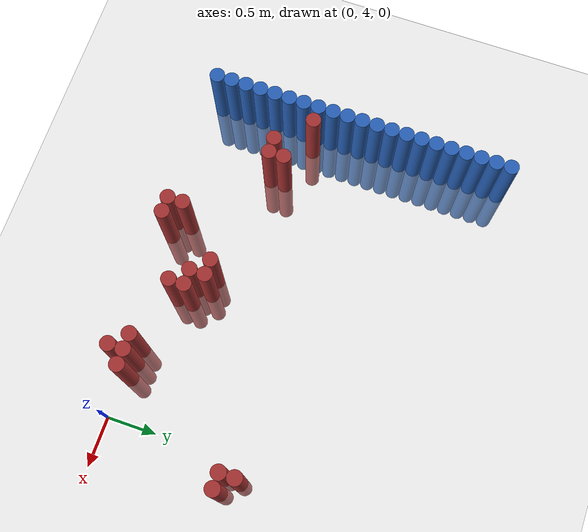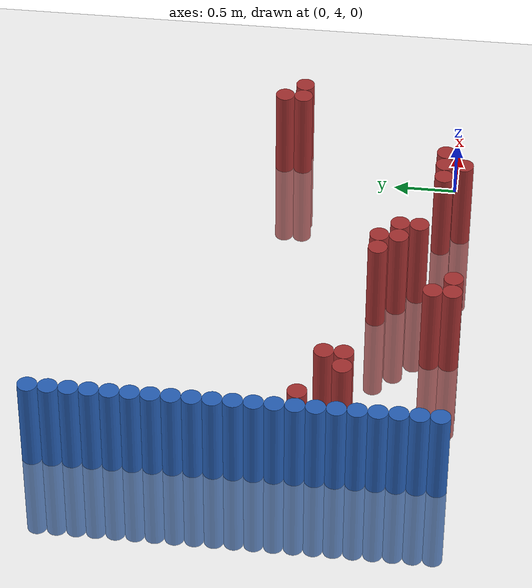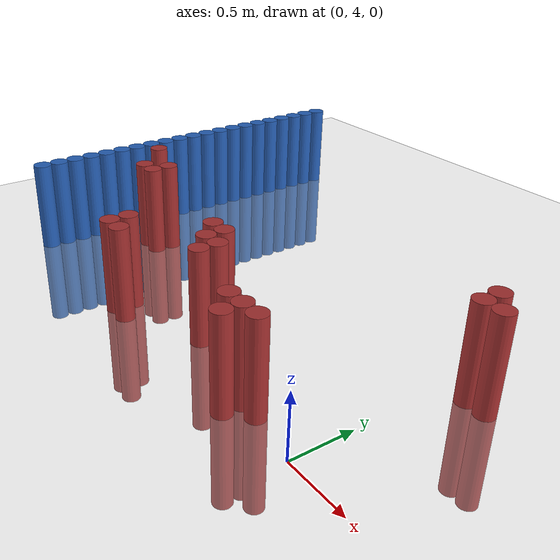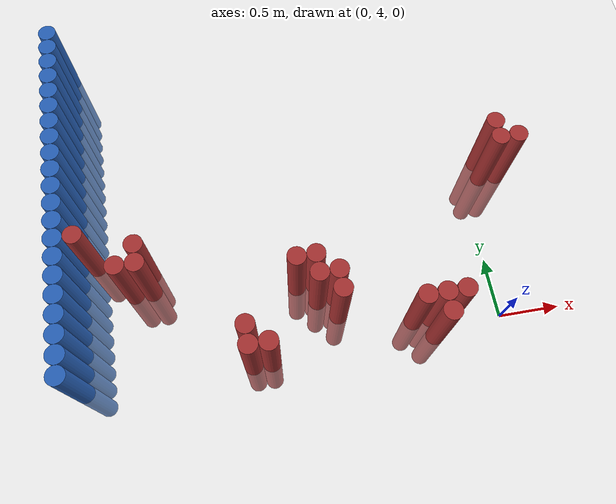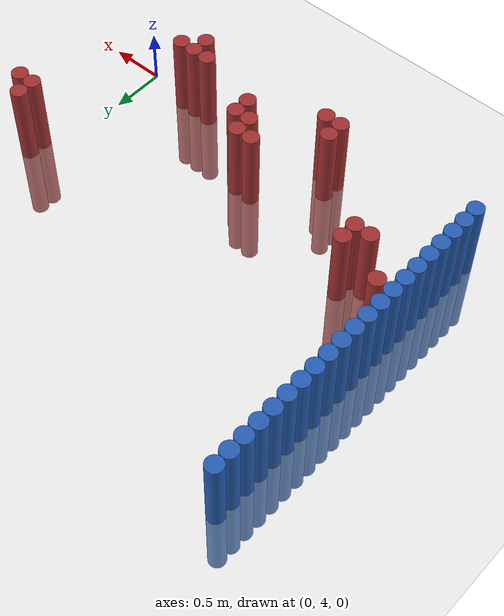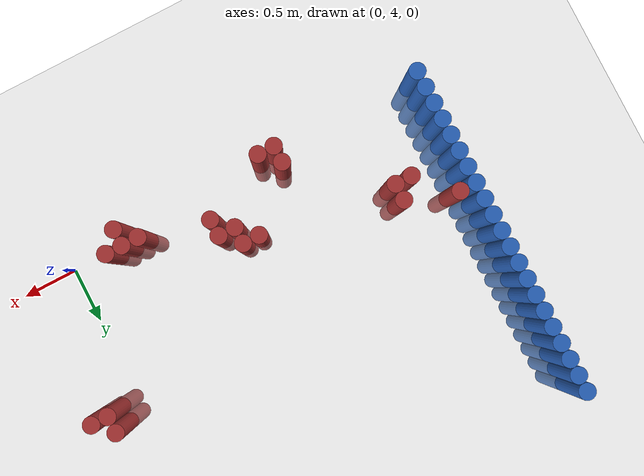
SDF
<sdf version="1.6">
 <world name="default">
  <model name="ground_plane">
   <static>1</static>
   <link name="link">
    <collision name="collision">
     <geometry><plane><normal>0 0 1</normal><size>100 100</size></plane></geometry>
     <surface><friction><ode><mu>100</mu><mu2>50</mu2></ode></friction></surface>
    </collision>
    <visual name="visual">
     <cast_shadows>0</cast_shadows>
     <geometry><plane><normal>0 0 1</normal><size>100 100</size></plane></geometry>
     <material>
      <script><uri>file://media/materials/scripts/gazebo.material</uri><name>Gazebo/Grey</name></script>
     </material>
    </visual>
   </link>
  </model>
  <model name="unit_cylinder_169">
   <static>1</static>
   <pose>-3.425000 4.075000 0.000000 0.000000 0.000000 0.000000</pose>
   <link name="link">
    <inertial>
     <mass>1</mass>
     <inertia><ixx>0.145833</ixx><ixy>0</ixy><ixz>0</ixz><iyy>0.145833</iyy><iyz>0</iyz><izz>0.125</izz></inertia>
    </inertial>
    <collision name="collision">
     <geometry><cylinder><radius>0.075000</radius><length>1.5</length></cylinder></geometry>
    </collision>
    <visual name="visual">
     <geometry><cylinder><radius>0.075000</radius><length>1.5</length></cylinder></geometry>
     <material>
      <ambient>0.152000 0.379000 0.720000 1</ambient>
      <diffuse>0.152000 0.379000 0.720000 1</diffuse>
     </material>
     <material>
      <script><name>Gazebo/Grey</name><uri>file://media/materials/scripts/gazebo.material</uri></script>
     </material>
    </visual>
   </link>
  </model>
  <model name="unit_cylinder_171">
   <static>1</static>
   <pose>-3.425000 4.225000 0.000000 0.000000 0.000000 0.000000</pose>
   <link name="link">
    <inertial>
     <mass>1</mass>
     <inertia><ixx>0.145833</ixx><ixy>0</ixy><ixz>0</ixz><iyy>0.145833</iyy><iyz>0</iyz><izz>0.125</izz></inertia>
    </inertial>
    <collision name="collision">
     <geometry><cylinder><radius>0.075000</radius><length>1.5</length></cylinder></geometry>
    </collision>
    <visual name="visual">
     <geometry><cylinder><radius>0.075000</radius><length>1.5</length></cylinder></geometry>
     <material>
      <ambient>0.152000 0.379000 0.720000 1</ambient>
      <diffuse>0.152000 0.379000 0.720000 1</diffuse>
     </material>
     <material>
      <script><name>Gazebo/Grey</name><uri>file://media/materials/scripts/gazebo.material</uri></script>
     </material>
    </visual>
   </link>
  </model>
  <model name="unit_cylinder_173">
   <static>1</static>
   <pose>-3.425000 4.375000 0.000000 0.000000 0.000000 0.000000</pose>
   <link name="link">
    <inertial>
     <mass>1</mass>
     <inertia><ixx>0.145833</ixx><ixy>0</ixy><ixz>0</ixz><iyy>0.145833</iyy><iyz>0</iyz><izz>0.125</izz></inertia>
    </inertial>
    <collision name="collision">
     <geometry><cylinder><radius>0.075000</radius><length>1.5</length></cylinder></geometry>
    </collision>
    <visual name="visual">
     <geometry><cylinder><radius>0.075000</radius><length>1.5</length></cylinder></geometry>
     <material>
      <ambient>0.152000 0.379000 0.720000 1</ambient>
      <diffuse>0.152000 0.379000 0.720000 1</diffuse>
     </material>
     <material>
      <script><name>Gazebo/Grey</name><uri>file://media/materials/scripts/gazebo.material</uri></script>
     </material>
    </visual>
   </link>
  </model>
  <model name="unit_cylinder_175">
   <static>1</static>
   <pose>-3.425000 4.525000 0.000000 0.000000 0.000000 0.000000</pose>
   <link name="link">
    <inertial>
     <mass>1</mass>
     <inertia><ixx>0.145833</ixx><ixy>0</ixy><ixz>0</ixz><iyy>0.145833</iyy><iyz>0</iyz><izz>0.125</izz></inertia>
    </inertial>
    <collision name="collision">
     <geometry><cylinder><radius>0.075000</radius><length>1.5</length></cylinder></geometry>
    </collision>
    <visual name="visual">
     <geometry><cylinder><radius>0.075000</radius><length>1.5</length></cylinder></geometry>
     <material>
      <ambient>0.152000 0.379000 0.720000 1</ambient>
      <diffuse>0.152000 0.379000 0.720000 1</diffuse>
     </material>
     <material>
      <script><name>Gazebo/Grey</name><uri>file://media/materials/scripts/gazebo.material</uri></script>
     </material>
    </visual>
   </link>
  </model>
  <model name="unit_cylinder_177">
   <static>1</static>
   <pose>-3.425000 4.675000 0.000000 0.000000 0.000000 0.000000</pose>
   <link name="link">
    <inertial>
     <mass>1</mass>
     <inertia><ixx>0.145833</ixx><ixy>0</ixy><ixz>0</ixz><iyy>0.145833</iyy><iyz>0</iyz><izz>0.125</izz></inertia>
    </inertial>
    <collision name="collision">
     <geometry><cylinder><radius>0.075000</radius><length>1.5</length></cylinder></geometry>
    </collision>
    <visual name="visual">
     <geometry><cylinder><radius>0.075000</radius><length>1.5</length></cylinder></geometry>
     <material>
      <ambient>0.152000 0.379000 0.720000 1</ambient>
      <diffuse>0.152000 0.379000 0.720000 1</diffuse>
     </material>
     <material>
      <script><name>Gazebo/Grey</name><uri>file://media/materials/scripts/gazebo.material</uri></script>
     </material>
    </visual>
   </link>
  </model>
  <model name="unit_cylinder_179">
   <static>1</static>
   <pose>-3.425000 4.825000 0.000000 0.000000 0.000000 0.000000</pose>
   <link name="link">
    <inertial>
     <mass>1</mass>
     <inertia><ixx>0.145833</ixx><ixy>0</ixy><ixz>0</ixz><iyy>0.145833</iyy><iyz>0</iyz><izz>0.125</izz></inertia>
    </inertial>
    <collision name="collision">
     <geometry><cylinder><radius>0.075000</radius><length>1.5</length></cylinder></geometry>
    </collision>
    <visual name="visual">
     <geometry><cylinder><radius>0.075000</radius><length>1.5</length></cylinder></geometry>
     <material>
      <ambient>0.152000 0.379000 0.720000 1</ambient>
      <diffuse>0.152000 0.379000 0.720000 1</diffuse>
     </material>
     <material>
      <script><name>Gazebo/Grey</name><uri>file://media/materials/scripts/gazebo.material</uri></script>
     </material>
    </visual>
   </link>
  </model>
  <model name="unit_cylinder_181">
   <static>1</static>
   <pose>-3.425000 4.975000 0.000000 0.000000 0.000000 0.000000</pose>
   <link name="link">
    <inertial>
     <mass>1</mass>
     <inertia><ixx>0.145833</ixx><ixy>0</ixy><ixz>0</ixz><iyy>0.145833</iyy><iyz>0</iyz><izz>0.125</izz></inertia>
    </inertial>
    <collision name="collision">
     <geometry><cylinder><radius>0.075000</radius><length>1.5</length></cylinder></geometry>
    </collision>
    <visual name="visual">
     <geometry><cylinder><radius>0.075000</radius><length>1.5</length></cylinder></geometry>
     <material>
      <ambient>0.152000 0.379000 0.720000 1</ambient>
      <diffuse>0.152000 0.379000 0.720000 1</diffuse>
     </material>
     <material>
      <script><name>Gazebo/Grey</name><uri>file://media/materials/scripts/gazebo.material</uri></script>
     </material>
    </visual>
   </link>
  </model>
  <model name="unit_cylinder_183">
   <static>1</static>
   <pose>-3.425000 5.125000 0.000000 0.000000 0.000000 0.000000</pose>
   <link name="link">
    <inertial>
     <mass>1</mass>
     <inertia><ixx>0.145833</ixx><ixy>0</ixy><ixz>0</ixz><iyy>0.145833</iyy><iyz>0</iyz><izz>0.125</izz></inertia>
    </inertial>
    <collision name="collision">
     <geometry><cylinder><radius>0.075000</radius><length>1.5</length></cylinder></geometry>
    </collision>
    <visual name="visual">
     <geometry><cylinder><radius>0.075000</radius><length>1.5</length></cylinder></geometry>
     <material>
      <ambient>0.152000 0.379000 0.720000 1</ambient>
      <diffuse>0.152000 0.379000 0.720000 1</diffuse>
     </material>
     <material>
      <script><name>Gazebo/Grey</name><uri>file://media/materials/scripts/gazebo.material</uri></script>
     </material>
    </visual>
   </link>
  </model>
  <model name="unit_cylinder_185">
   <static>1</static>
   <pose>-3.425000 5.275000 0.000000 0.000000 0.000000 0.000000</pose>
   <link name="link">
    <inertial>
     <mass>1</mass>
     <inertia><ixx>0.145833</ixx><ixy>0</ixy><ixz>0</ixz><iyy>0.145833</iyy><iyz>0</iyz><izz>0.125</izz></inertia>
    </inertial>
    <collision name="collision">
     <geometry><cylinder><radius>0.075000</radius><length>1.5</length></cylinder></geometry>
    </collision>
    <visual name="visual">
     <geometry><cylinder><radius>0.075000</radius><length>1.5</length></cylinder></geometry>
     <material>
      <ambient>0.152000 0.379000 0.720000 1</ambient>
      <diffuse>0.152000 0.379000 0.720000 1</diffuse>
     </material>
     <material>
      <script><name>Gazebo/Grey</name><uri>file://media/materials/scripts/gazebo.material</uri></script>
     </material>
    </visual>
   </link>
  </model>
  <model name="unit_cylinder_187">
   <static>1</static>
   <pose>-3.425000 5.425000 0.000000 0.000000 0.000000 0.000000</pose>
   <link name="link">
    <inertial>
     <mass>1</mass>
     <inertia><ixx>0.145833</ixx><ixy>0</ixy><ixz>0</ixz><iyy>0.145833</iyy><iyz>0</iyz><izz>0.125</izz></inertia>
    </inertial>
    <collision name="collision">
     <geometry><cylinder><radius>0.075000</radius><length>1.5</length></cylinder></geometry>
    </collision>
    <visual name="visual">
     <geometry><cylinder><radius>0.075000</radius><length>1.5</length></cylinder></geometry>
     <material>
      <ambient>0.152000 0.379000 0.720000 1</ambient>
      <diffuse>0.152000 0.379000 0.720000 1</diffuse>
     </material>
     <material>
      <script><name>Gazebo/Grey</name><uri>file://media/materials/scripts/gazebo.material</uri></script>
     </material>
    </visual>
   </link>
  </model>
  <model name="unit_cylinder_189">
   <static>1</static>
   <pose>-3.425000 5.575000 0.000000 0.000000 0.000000 0.000000</pose>
   <link name="link">
    <inertial>
     <mass>1</mass>
     <inertia><ixx>0.145833</ixx><ixy>0</ixy><ixz>0</ixz><iyy>0.145833</iyy><iyz>0</iyz><izz>0.125</izz></inertia>
    </inertial>
    <collision name="collision">
     <geometry><cylinder><radius>0.075000</radius><length>1.5</length></cylinder></geometry>
    </collision>
    <visual name="visual">
     <geometry><cylinder><radius>0.075000</radius><length>1.5</length></cylinder></geometry>
     <material>
      <ambient>0.152000 0.379000 0.720000 1</ambient>
      <diffuse>0.152000 0.379000 0.720000 1</diffuse>
     </material>
     <material>
      <script><name>Gazebo/Grey</name><uri>file://media/materials/scripts/gazebo.material</uri></script>
     </material>
    </visual>
   </link>
  </model>
  <model name="unit_cylinder_191">
   <static>1</static>
   <pose>-3.425000 5.725000 0.000000 0.000000 0.000000 0.000000</pose>
   <link name="link">
    <inertial>
     <mass>1</mass>
     <inertia><ixx>0.145833</ixx><ixy>0</ixy><ixz>0</ixz><iyy>0.145833</iyy><iyz>0</iyz><izz>0.125</izz></inertia>
    </inertial>
    <collision name="collision">
     <geometry><cylinder><radius>0.075000</radius><length>1.5</length></cylinder></geometry>
    </collision>
    <visual name="visual">
     <geometry><cylinder><radius>0.075000</radius><length>1.5</length></cylinder></geometry>
     <material>
      <ambient>0.152000 0.379000 0.720000 1</ambient>
      <diffuse>0.152000 0.379000 0.720000 1</diffuse>
     </material>
     <material>
      <script><name>Gazebo/Grey</name><uri>file://media/materials/scripts/gazebo.material</uri></script>
     </material>
    </visual>
   </link>
  </model>
  <model name="unit_cylinder_193">
   <static>1</static>
   <pose>-3.425000 5.875000 0.000000 0.000000 0.000000 0.000000</pose>
   <link name="link">
    <inertial>
     <mass>1</mass>
     <inertia><ixx>0.145833</ixx><ixy>0</ixy><ixz>0</ixz><iyy>0.145833</iyy><iyz>0</iyz><izz>0.125</izz></inertia>
    </inertial>
    <collision name="collision">
     <geometry><cylinder><radius>0.075000</radius><length>1.5</length></cylinder></geometry>
    </collision>
    <visual name="visual">
     <geometry><cylinder><radius>0.075000</radius><length>1.5</length></cylinder></geometry>
     <material>
      <ambient>0.152000 0.379000 0.720000 1</ambient>
      <diffuse>0.152000 0.379000 0.720000 1</diffuse>
     </material>
     <material>
      <script><name>Gazebo/Grey</name><uri>file://media/materials/scripts/gazebo.material</uri></script>
     </material>
    </visual>
   </link>
  </model>
  <model name="unit_cylinder_195">
   <static>1</static>
   <pose>-3.425000 6.025000 0.000000 0.000000 0.000000 0.000000</pose>
   <link name="link">
    <inertial>
     <mass>1</mass>
     <inertia><ixx>0.145833</ixx><ixy>0</ixy><ixz>0</ixz><iyy>0.145833</iyy><iyz>0</iyz><izz>0.125</izz></inertia>
    </inertial>
    <collision name="collision">
     <geometry><cylinder><radius>0.075000</radius><length>1.5</length></cylinder></geometry>
    </collision>
    <visual name="visual">
     <geometry><cylinder><radius>0.075000</radius><length>1.5</length></cylinder></geometry>
     <material>
      <ambient>0.152000 0.379000 0.720000 1</ambient>
      <diffuse>0.152000 0.379000 0.720000 1</diffuse>
     </material>
     <material>
      <script><name>Gazebo/Grey</name><uri>file://media/materials/scripts/gazebo.material</uri></script>
     </material>
    </visual>
   </link>
  </model>
  <model name="unit_cylinder_197">
   <static>1</static>
   <pose>-3.425000 6.175000 0.000000 0.000000 0.000000 0.000000</pose>
   <link name="link">
    <inertial>
     <mass>1</mass>
     <inertia><ixx>0.145833</ixx><ixy>0</ixy><ixz>0</ixz><iyy>0.145833</iyy><iyz>0</iyz><izz>0.125</izz></inertia>
    </inertial>
    <collision name="collision">
     <geometry><cylinder><radius>0.075000</radius><length>1.5</length></cylinder></geometry>
    </collision>
    <visual name="visual">
     <geometry><cylinder><radius>0.075000</radius><length>1.5</length></cylinder></geometry>
     <material>
      <ambient>0.152000 0.379000 0.720000 1</ambient>
      <diffuse>0.152000 0.379000 0.720000 1</diffuse>
     </material>
     <material>
      <script><name>Gazebo/Grey</name><uri>file://media/materials/scripts/gazebo.material</uri></script>
     </material>
    </visual>
   </link>
  </model>
  <model name="unit_cylinder_199">
   <static>1</static>
   <pose>-3.425000 6.325000 0.000000 0.000000 0.000000 0.000000</pose>
   <link name="link">
    <inertial>
     <mass>1</mass>
     <inertia><ixx>0.145833</ixx><ixy>0</ixy><ixz>0</ixz><iyy>0.145833</iyy><iyz>0</iyz><izz>0.125</izz></inertia>
    </inertial>
    <collision name="collision">
     <geometry><cylinder><radius>0.075000</radius><length>1.5</length></cylinder></geometry>
    </collision>
    <visual name="visual">
     <geometry><cylinder><radius>0.075000</radius><length>1.5</length></cylinder></geometry>
     <material>
      <ambient>0.152000 0.379000 0.720000 1</ambient>
      <diffuse>0.152000 0.379000 0.720000 1</diffuse>
     </material>
     <material>
      <script><name>Gazebo/Grey</name><uri>file://media/materials/scripts/gazebo.material</uri></script>
     </material>
    </visual>
   </link>
  </model>
  <model name="unit_cylinder_201">
   <static>1</static>
   <pose>-3.425000 6.475000 0.000000 0.000000 0.000000 0.000000</pose>
   <link name="link">
    <inertial>
     <mass>1</mass>
     <inertia><ixx>0.145833</ixx><ixy>0</ixy><ixz>0</ixz><iyy>0.145833</iyy><iyz>0</iyz><izz>0.125</izz></inertia>
    </inertial>
    <collision name="collision">
     <geometry><cylinder><radius>0.075000</radius><length>1.5</length></cylinder></geometry>
    </collision>
    <visual name="visual">
     <geometry><cylinder><radius>0.075000</radius><length>1.5</length></cylinder></geometry>
     <material>
      <ambient>0.152000 0.379000 0.720000 1</ambient>
      <diffuse>0.152000 0.379000 0.720000 1</diffuse>
     </material>
     <material>
      <script><name>Gazebo/Grey</name><uri>file://media/materials/scripts/gazebo.material</uri></script>
     </material>
    </visual>
   </link>
  </model>
  <model name="unit_cylinder_203">
   <static>1</static>
   <pose>-3.425000 6.625000 0.000000 0.000000 0.000000 0.000000</pose>
   <link name="link">
    <inertial>
     <mass>1</mass>
     <inertia><ixx>0.145833</ixx><ixy>0</ixy><ixz>0</ixz><iyy>0.145833</iyy><iyz>0</iyz><izz>0.125</izz></inertia>
    </inertial>
    <collision name="collision">
     <geometry><cylinder><radius>0.075000</radius><length>1.5</length></cylinder></geometry>
    </collision>
    <visual name="visual">
     <geometry><cylinder><radius>0.075000</radius><length>1.5</length></cylinder></geometry>
     <material>
      <ambient>0.152000 0.379000 0.720000 1</ambient>
      <diffuse>0.152000 0.379000 0.720000 1</diffuse>
     </material>
     <material>
      <script><name>Gazebo/Grey</name><uri>file://media/materials/scripts/gazebo.material</uri></script>
     </material>
    </visual>
   </link>
  </model>
  <model name="unit_cylinder_205">
   <static>1</static>
   <pose>-3.425000 6.775000 0.000000 0.000000 0.000000 0.000000</pose>
   <link name="link">
    <inertial>
     <mass>1</mass>
     <inertia><ixx>0.145833</ixx><ixy>0</ixy><ixz>0</ixz><iyy>0.145833</iyy><iyz>0</iyz><izz>0.125</izz></inertia>
    </inertial>
    <collision name="collision">
     <geometry><cylinder><radius>0.075000</radius><length>1.5</length></cylinder></geometry>
    </collision>
    <visual name="visual">
     <geometry><cylinder><radius>0.075000</radius><length>1.5</length></cylinder></geometry>
     <material>
      <ambient>0.152000 0.379000 0.720000 1</ambient>
      <diffuse>0.152000 0.379000 0.720000 1</diffuse>
     </material>
     <material>
      <script><name>Gazebo/Grey</name><uri>file://media/materials/scripts/gazebo.material</uri></script>
     </material>
    </visual>
   </link>
  </model>
  <model name="unit_cylinder_207">
   <static>1</static>
   <pose>-3.425000 6.925000 0.000000 0.000000 0.000000 0.000000</pose>
   <link name="link">
    <inertial>
     <mass>1</mass>
     <inertia><ixx>0.145833</ixx><ixy>0</ixy><ixz>0</ixz><iyy>0.145833</iyy><iyz>0</iyz><izz>0.125</izz></inertia>
    </inertial>
    <collision name="collision">
     <geometry><cylinder><radius>0.075000</radius><length>1.5</length></cylinder></geometry>
    </collision>
    <visual name="visual">
     <geometry><cylinder><radius>0.075000</radius><length>1.5</length></cylinder></geometry>
     <material>
      <ambient>0.152000 0.379000 0.720000 1</ambient>
      <diffuse>0.152000 0.379000 0.720000 1</diffuse>
     </material>
     <material>
      <script><name>Gazebo/Grey</name><uri>file://media/materials/scripts/gazebo.material</uri></script>
     </material>
    </visual>
   </link>
  </model>
  <model name="unit_cylinder_247">
   <static>1</static>
   <pose>-3.425000 3.925000 0.000000 0.000000 0.000000 0.000000</pose>
   <link name="link">
    <inertial>
     <mass>1</mass>
     <inertia><ixx>0.145833</ixx><ixy>0</ixy><ixz>0</ixz><iyy>0.145833</iyy><iyz>0</iyz><izz>0.125</izz></inertia>
    </inertial>
    <collision name="collision">
     <geometry><cylinder><radius>0.075000</radius><length>1.5</length></cylinder></geometry>
    </collision>
    <visual name="visual">
     <geometry><cylinder><radius>0.075000</radius><length>1.5</length></cylinder></geometry>
     <material>
      <ambient>0.152000 0.379000 0.720000 1</ambient>
      <diffuse>0.152000 0.379000 0.720000 1</diffuse>
     </material>
     <material>
      <script><name>Gazebo/Grey</name><uri>file://media/materials/scripts/gazebo.material</uri></script>
     </material>
    </visual>
   </link>
  </model>
  <model name="unit_cylinder_248">
   <static>1</static>
   <pose>-3.425000 4.075000 0.000000 0.000000 0.000000 0.000000</pose>
   <link name="link">
    <inertial>
     <mass>1</mass>
     <inertia><ixx>0.145833</ixx><ixy>0</ixy><ixz>0</ixz><iyy>0.145833</iyy><iyz>0</iyz><izz>0.125</izz></inertia>
    </inertial>
    <collision name="collision">
     <geometry><cylinder><radius>0.075000</radius><length>1.5</length></cylinder></geometry>
    </collision>
    <visual name="visual">
     <geometry><cylinder><radius>0.075000</radius><length>1.5</length></cylinder></geometry>
     <material>
      <ambient>0.152000 0.379000 0.720000 1</ambient>
      <diffuse>0.152000 0.379000 0.720000 1</diffuse>
     </material>
     <material>
      <script><name>Gazebo/Grey</name><uri>file://media/materials/scripts/gazebo.material</uri></script>
     </material>
    </visual>
   </link>
  </model>
  <model name="unit_cylinder_249">
   <static>1</static>
   <pose>-3.425000 4.225000 0.000000 0.000000 0.000000 0.000000</pose>
   <link name="link">
    <inertial>
     <mass>1</mass>
     <inertia><ixx>0.145833</ixx><ixy>0</ixy><ixz>0</ixz><iyy>0.145833</iyy><iyz>0</iyz><izz>0.125</izz></inertia>
    </inertial>
    <collision name="collision">
     <geometry><cylinder><radius>0.075000</radius><length>1.5</length></cylinder></geometry>
    </collision>
    <visual name="visual">
     <geometry><cylinder><radius>0.075000</radius><length>1.5</length></cylinder></geometry>
     <material>
      <ambient>0.152000 0.379000 0.720000 1</ambient>
      <diffuse>0.152000 0.379000 0.720000 1</diffuse>
     </material>
     <material>
      <script><name>Gazebo/Grey</name><uri>file://media/materials/scripts/gazebo.material</uri></script>
     </material>
    </visual>
   </link>
  </model>
  <model name="unit_cylinder_250">
   <static>1</static>
   <pose>-3.425000 4.375000 0.000000 0.000000 0.000000 0.000000</pose>
   <link name="link">
    <inertial>
     <mass>1</mass>
     <inertia><ixx>0.145833</ixx><ixy>0</ixy><ixz>0</ixz><iyy>0.145833</iyy><iyz>0</iyz><izz>0.125</izz></inertia>
    </inertial>
    <collision name="collision">
     <geometry><cylinder><radius>0.075000</radius><length>1.5</length></cylinder></geometry>
    </collision>
    <visual name="visual">
     <geometry><cylinder><radius>0.075000</radius><length>1.5</length></cylinder></geometry>
     <material>
      <ambient>0.152000 0.379000 0.720000 1</ambient>
      <diffuse>0.152000 0.379000 0.720000 1</diffuse>
     </material>
     <material>
      <script><name>Gazebo/Grey</name><uri>file://media/materials/scripts/gazebo.material</uri></script>
     </material>
    </visual>
   </link>
  </model>
  <model name="unit_cylinder_251">
   <static>1</static>
   <pose>-3.425000 4.525000 0.000000 0.000000 0.000000 0.000000</pose>
   <link name="link">
    <inertial>
     <mass>1</mass>
     <inertia><ixx>0.145833</ixx><ixy>0</ixy><ixz>0</ixz><iyy>0.145833</iyy><iyz>0</iyz><izz>0.125</izz></inertia>
    </inertial>
    <collision name="collision">
     <geometry><cylinder><radius>0.075000</radius><length>1.5</length></cylinder></geometry>
    </collision>
    <visual name="visual">
     <geometry><cylinder><radius>0.075000</radius><length>1.5</length></cylinder></geometry>
     <material>
      <ambient>0.152000 0.379000 0.720000 1</ambient>
      <diffuse>0.152000 0.379000 0.720000 1</diffuse>
     </material>
     <material>
      <script><name>Gazebo/Grey</name><uri>file://media/materials/scripts/gazebo.material</uri></script>
     </material>
    </visual>
   </link>
  </model>
  <model name="unit_cylinder_252">
   <static>1</static>
   <pose>-3.425000 4.675000 0.000000 0.000000 0.000000 0.000000</pose>
   <link name="link">
    <inertial>
     <mass>1</mass>
     <inertia><ixx>0.145833</ixx><ixy>0</ixy><ixz>0</ixz><iyy>0.145833</iyy><iyz>0</iyz><izz>0.125</izz></inertia>
    </inertial>
    <collision name="collision">
     <geometry><cylinder><radius>0.075000</radius><length>1.5</length></cylinder></geometry>
    </collision>
    <visual name="visual">
     <geometry><cylinder><radius>0.075000</radius><length>1.5</length></cylinder></geometry>
     <material>
      <ambient>0.152000 0.379000 0.720000 1</ambient>
      <diffuse>0.152000 0.379000 0.720000 1</diffuse>
     </material>
     <material>
      <script><name>Gazebo/Grey</name><uri>file://media/materials/scripts/gazebo.material</uri></script>
     </material>
    </visual>
   </link>
  </model>
  <model name="unit_cylinder_253">
   <static>1</static>
   <pose>-3.425000 4.825000 0.000000 0.000000 0.000000 0.000000</pose>
   <link name="link">
    <inertial>
     <mass>1</mass>
     <inertia><ixx>0.145833</ixx><ixy>0</ixy><ixz>0</ixz><iyy>0.145833</iyy><iyz>0</iyz><izz>0.125</izz></inertia>
    </inertial>
    <collision name="collision">
     <geometry><cylinder><radius>0.075000</radius><length>1.5</length></cylinder></geometry>
    </collision>
    <visual name="visual">
     <geometry><cylinder><radius>0.075000</radius><length>1.5</length></cylinder></geometry>
     <material>
      <ambient>0.152000 0.379000 0.720000 1</ambient>
      <diffuse>0.152000 0.379000 0.720000 1</diffuse>
     </material>
     <material>
      <script><name>Gazebo/Grey</name><uri>file://media/materials/scripts/gazebo.material</uri></script>
     </material>
    </visual>
   </link>
  </model>
  <model name="unit_cylinder_254">
   <static>1</static>
   <pose>-3.425000 4.975000 0.000000 0.000000 0.000000 0.000000</pose>
   <link name="link">
    <inertial>
     <mass>1</mass>
     <inertia><ixx>0.145833</ixx><ixy>0</ixy><ixz>0</ixz><iyy>0.145833</iyy><iyz>0</iyz><izz>0.125</izz></inertia>
    </inertial>
    <collision name="collision">
     <geometry><cylinder><radius>0.075000</radius><length>1.5</length></cylinder></geometry>
    </collision>
    <visual name="visual">
     <geometry><cylinder><radius>0.075000</radius><length>1.5</length></cylinder></geometry>
     <material>
      <ambient>0.152000 0.379000 0.720000 1</ambient>
      <diffuse>0.152000 0.379000 0.720000 1</diffuse>
     </material>
     <material>
      <script><name>Gazebo/Grey</name><uri>file://media/materials/scripts/gazebo.material</uri></script>
     </material>
    </visual>
   </link>
  </model>
  <model name="unit_cylinder_255">
   <static>1</static>
   <pose>-3.425000 5.125000 0.000000 0.000000 0.000000 0.000000</pose>
   <link name="link">
    <inertial>
     <mass>1</mass>
     <inertia><ixx>0.145833</ixx><ixy>0</ixy><ixz>0</ixz><iyy>0.145833</iyy><iyz>0</iyz><izz>0.125</izz></inertia>
    </inertial>
    <collision name="collision">
     <geometry><cylinder><radius>0.075000</radius><length>1.5</length></cylinder></geometry>
    </collision>
    <visual name="visual">
     <geometry><cylinder><radius>0.075000</radius><length>1.5</length></cylinder></geometry>
     <material>
      <ambient>0.152000 0.379000 0.720000 1</ambient>
      <diffuse>0.152000 0.379000 0.720000 1</diffuse>
     </material>
     <material>
      <script><name>Gazebo/Grey</name><uri>file://media/materials/scripts/gazebo.material</uri></script>
     </material>
    </visual>
   </link>
  </model>
  <model name="unit_cylinder_256">
   <static>1</static>
   <pose>-3.425000 5.275000 0.000000 0.000000 0.000000 0.000000</pose>
   <link name="link">
    <inertial>
     <mass>1</mass>
     <inertia><ixx>0.145833</ixx><ixy>0</ixy><ixz>0</ixz><iyy>0.145833</iyy><iyz>0</iyz><izz>0.125</izz></inertia>
    </inertial>
    <collision name="collision">
     <geometry><cylinder><radius>0.075000</radius><length>1.5</length></cylinder></geometry>
    </collision>
    <visual name="visual">
     <geometry><cylinder><radius>0.075000</radius><length>1.5</length></cylinder></geometry>
     <material>
      <ambient>0.152000 0.379000 0.720000 1</ambient>
      <diffuse>0.152000 0.379000 0.720000 1</diffuse>
     </material>
     <material>
      <script><name>Gazebo/Grey</name><uri>file://media/materials/scripts/gazebo.material</uri></script>
     </material>
    </visual>
   </link>
  </model>
  <model name="unit_cylinder_257">
   <static>1</static>
   <pose>-3.425000 5.425000 0.000000 0.000000 0.000000 0.000000</pose>
   <link name="link">
    <inertial>
     <mass>1</mass>
     <inertia><ixx>0.145833</ixx><ixy>0</ixy><ixz>0</ixz><iyy>0.145833</iyy><iyz>0</iyz><izz>0.125</izz></inertia>
    </inertial>
    <collision name="collision">
     <geometry><cylinder><radius>0.075000</radius><length>1.5</length></cylinder></geometry>
    </collision>
    <visual name="visual">
     <geometry><cylinder><radius>0.075000</radius><length>1.5</length></cylinder></geometry>
     <material>
      <ambient>0.152000 0.379000 0.720000 1</ambient>
      <diffuse>0.152000 0.379000 0.720000 1</diffuse>
     </material>
     <material>
      <script><name>Gazebo/Grey</name><uri>file://media/materials/scripts/gazebo.material</uri></script>
     </material>
    </visual>
   </link>
  </model>
  <model name="unit_cylinder_280">
   <static>1</static>
   <pose>-3.275000 4.975000 0.000000 0.000000 0.000000 0.000000</pose>
   <link name="link">
    <inertial>
     <mass>1</mass>
     <inertia><ixx>0.145833</ixx><ixy>0</ixy><ixz>0</ixz><iyy>0.145833</iyy><iyz>0</iyz><izz>0.125</izz></inertia>
    </inertial>
    <collision name="collision">
     <geometry><cylinder><radius>0.075000</radius><length>1.5</length></cylinder></geometry>
    </collision>
    <visual name="visual">
     <geometry><cylinder><radius>0.075000</radius><length>1.5</length></cylinder></geometry>
     <material>
      <ambient>0.648000 0.192000 0.192000 1</ambient>
      <diffuse>0.648000 0.192000 0.192000 1</diffuse>
     </material>
     <material>
      <script><name>Gazebo/Grey</name><uri>file://media/materials/scripts/gazebo.material</uri></script>
     </material>
    </visual>
   </link>
  </model>
  <model name="unit_cylinder_290">
   <static>1</static>
   <pose>-2.975000 4.675000 0.000000 0.000000 0.000000 0.000000</pose>
   <link name="link">
    <inertial>
     <mass>1</mass>
     <inertia><ixx>0.145833</ixx><ixy>0</ixy><ixz>0</ixz><iyy>0.145833</iyy><iyz>0</iyz><izz>0.125</izz></inertia>
    </inertial>
    <collision name="collision">
     <geometry><cylinder><radius>0.075000</radius><length>1.5</length></cylinder></geometry>
    </collision>
    <visual name="visual">
     <geometry><cylinder><radius>0.075000</radius><length>1.5</length></cylinder></geometry>
     <material>
      <ambient>0.648000 0.192000 0.192000 1</ambient>
      <diffuse>0.648000 0.192000 0.192000 1</diffuse>
     </material>
     <material>
      <script><name>Gazebo/Grey</name><uri>file://media/materials/scripts/gazebo.material</uri></script>
     </material>
    </visual>
   </link>
  </model>
  <model name="unit_cylinder_292">
   <static>1</static>
   <pose>-2.825000 4.675000 0.000000 0.000000 0.000000 0.000000</pose>
   <link name="link">
    <inertial>
     <mass>1</mass>
     <inertia><ixx>0.145833</ixx><ixy>0</ixy><ixz>0</ixz><iyy>0.145833</iyy><iyz>0</iyz><izz>0.125</izz></inertia>
    </inertial>
    <collision name="collision">
     <geometry><cylinder><radius>0.075000</radius><length>1.5</length></cylinder></geometry>
    </collision>
    <visual name="visual">
     <geometry><cylinder><radius>0.075000</radius><length>1.5</length></cylinder></geometry>
     <material>
      <ambient>0.648000 0.192000 0.192000 1</ambient>
      <diffuse>0.648000 0.192000 0.192000 1</diffuse>
     </material>
     <material>
      <script><name>Gazebo/Grey</name><uri>file://media/materials/scripts/gazebo.material</uri></script>
     </material>
    </visual>
   </link>
  </model>
  <model name="unit_cylinder_293">
   <static>1</static>
   <pose>-2.825000 4.825000 0.000000 0.000000 0.000000 0.000000</pose>
   <link name="link">
    <inertial>
     <mass>1</mass>
     <inertia><ixx>0.145833</ixx><ixy>0</ixy><ixz>0</ixz><iyy>0.145833</iyy><iyz>0</iyz><izz>0.125</izz></inertia>
    </inertial>
    <collision name="collision">
     <geometry><cylinder><radius>0.075000</radius><length>1.5</length></cylinder></geometry>
    </collision>
    <visual name="visual">
     <geometry><cylinder><radius>0.075000</radius><length>1.5</length></cylinder></geometry>
     <material>
      <ambient>0.648000 0.192000 0.192000 1</ambient>
      <diffuse>0.648000 0.192000 0.192000 1</diffuse>
     </material>
     <material>
      <script><name>Gazebo/Grey</name><uri>file://media/materials/scripts/gazebo.material</uri></script>
     </material>
    </visual>
   </link>
  </model>
  <model name="unit_cylinder_306">
   <static>1</static>
   <pose>-2.075000 3.925000 0.000000 0.000000 0.000000 0.000000</pose>
   <link name="link">
    <inertial>
     <mass>1</mass>
     <inertia><ixx>0.145833</ixx><ixy>0</ixy><ixz>0</ixz><iyy>0.145833</iyy><iyz>0</iyz><izz>0.125</izz></inertia>
    </inertial>
    <collision name="collision">
     <geometry><cylinder><radius>0.075000</radius><length>1.5</length></cylinder></geometry>
    </collision>
    <visual name="visual">
     <geometry><cylinder><radius>0.075000</radius><length>1.5</length></cylinder></geometry>
     <material>
      <ambient>0.648000 0.192000 0.192000 1</ambient>
      <diffuse>0.648000 0.192000 0.192000 1</diffuse>
     </material>
     <material>
      <script><name>Gazebo/Grey</name><uri>file://media/materials/scripts/gazebo.material</uri></script>
     </material>
    </visual>
   </link>
  </model>
  <model name="unit_cylinder_307">
   <static>1</static>
   <pose>-2.075000 4.075000 0.000000 0.000000 0.000000 0.000000</pose>
   <link name="link">
    <inertial>
     <mass>1</mass>
     <inertia><ixx>0.145833</ixx><ixy>0</ixy><ixz>0</ixz><iyy>0.145833</iyy><iyz>0</iyz><izz>0.125</izz></inertia>
    </inertial>
    <collision name="collision">
     <geometry><cylinder><radius>0.075000</radius><length>1.5</length></cylinder></geometry>
    </collision>
    <visual name="visual">
     <geometry><cylinder><radius>0.075000</radius><length>1.5</length></cylinder></geometry>
     <material>
      <ambient>0.648000 0.192000 0.192000 1</ambient>
      <diffuse>0.648000 0.192000 0.192000 1</diffuse>
     </material>
     <material>
      <script><name>Gazebo/Grey</name><uri>file://media/materials/scripts/gazebo.material</uri></script>
     </material>
    </visual>
   </link>
  </model>
  <model name="unit_cylinder_315">
   <static>1</static>
   <pose>-1.925000 3.925000 0.000000 0.000000 0.000000 0.000000</pose>
   <link name="link">
    <inertial>
     <mass>1</mass>
     <inertia><ixx>0.145833</ixx><ixy>0</ixy><ixz>0</ixz><iyy>0.145833</iyy><iyz>0</iyz><izz>0.125</izz></inertia>
    </inertial>
    <collision name="collision">
     <geometry><cylinder><radius>0.075000</radius><length>1.5</length></cylinder></geometry>
    </collision>
    <visual name="visual">
     <geometry><cylinder><radius>0.075000</radius><length>1.5</length></cylinder></geometry>
     <material>
      <ambient>0.648000 0.192000 0.192000 1</ambient>
      <diffuse>0.648000 0.192000 0.192000 1</diffuse>
     </material>
     <material>
      <script><name>Gazebo/Grey</name><uri>file://media/materials/scripts/gazebo.material</uri></script>
     </material>
    </visual>
   </link>
  </model>
  <model name="unit_cylinder_322">
   <static>1</static>
   <pose>-1.625000 4.525000 0.000000 0.000000 0.000000 0.000000</pose>
   <link name="link">
    <inertial>
     <mass>1</mass>
     <inertia><ixx>0.145833</ixx><ixy>0</ixy><ixz>0</ixz><iyy>0.145833</iyy><iyz>0</iyz><izz>0.125</izz></inertia>
    </inertial>
    <collision name="collision">
     <geometry><cylinder><radius>0.075000</radius><length>1.5</length></cylinder></geometry>
    </collision>
    <visual name="visual">
     <geometry><cylinder><radius>0.075000</radius><length>1.5</length></cylinder></geometry>
     <material>
      <ambient>0.648000 0.192000 0.192000 1</ambient>
      <diffuse>0.648000 0.192000 0.192000 1</diffuse>
     </material>
     <material>
      <script><name>Gazebo/Grey</name><uri>file://media/materials/scripts/gazebo.material</uri></script>
     </material>
    </visual>
   </link>
  </model>
  <model name="unit_cylinder_328">
   <static>1</static>
   <pose>-1.475000 4.375000 0.000000 0.000000 0.000000 0.000000</pose>
   <link name="link">
    <inertial>
     <mass>1</mass>
     <inertia><ixx>0.145833</ixx><ixy>0</ixy><ixz>0</ixz><iyy>0.145833</iyy><iyz>0</iyz><izz>0.125</izz></inertia>
    </inertial>
    <collision name="collision">
     <geometry><cylinder><radius>0.075000</radius><length>1.5</length></cylinder></geometry>
    </collision>
    <visual name="visual">
     <geometry><cylinder><radius>0.075000</radius><length>1.5</length></cylinder></geometry>
     <material>
      <ambient>0.648000 0.192000 0.192000 1</ambient>
      <diffuse>0.648000 0.192000 0.192000 1</diffuse>
     </material>
     <material>
      <script><name>Gazebo/Grey</name><uri>file://media/materials/scripts/gazebo.material</uri></script>
     </material>
    </visual>
   </link>
  </model>
  <model name="unit_cylinder_329">
   <static>1</static>
   <pose>-1.475000 4.525000 0.000000 0.000000 0.000000 0.000000</pose>
   <link name="link">
    <inertial>
     <mass>1</mass>
     <inertia><ixx>0.145833</ixx><ixy>0</ixy><ixz>0</ixz><iyy>0.145833</iyy><iyz>0</iyz><izz>0.125</izz></inertia>
    </inertial>
    <collision name="collision">
     <geometry><cylinder><radius>0.075000</radius><length>1.5</length></cylinder></geometry>
    </collision>
    <visual name="visual">
     <geometry><cylinder><radius>0.075000</radius><length>1.5</length></cylinder></geometry>
     <material>
      <ambient>0.648000 0.192000 0.192000 1</ambient>
      <diffuse>0.648000 0.192000 0.192000 1</diffuse>
     </material>
     <material>
      <script><name>Gazebo/Grey</name><uri>file://media/materials/scripts/gazebo.material</uri></script>
     </material>
    </visual>
   </link>
  </model>
  <model name="unit_cylinder_337">
   <static>1</static>
   <pose>-1.325000 4.225000 0.000000 0.000000 0.000000 0.000000</pose>
   <link name="link">
    <inertial>
     <mass>1</mass>
     <inertia><ixx>0.145833</ixx><ixy>0</ixy><ixz>0</ixz><iyy>0.145833</iyy><iyz>0</iyz><izz>0.125</izz></inertia>
    </inertial>
    <collision name="collision">
     <geometry><cylinder><radius>0.075000</radius><length>1.5</length></cylinder></geometry>
    </collision>
    <visual name="visual">
     <geometry><cylinder><radius>0.075000</radius><length>1.5</length></cylinder></geometry>
     <material>
      <ambient>0.648000 0.192000 0.192000 1</ambient>
      <diffuse>0.648000 0.192000 0.192000 1</diffuse>
     </material>
     <material>
      <script><name>Gazebo/Grey</name><uri>file://media/materials/scripts/gazebo.material</uri></script>
     </material>
    </visual>
   </link>
  </model>
  <model name="unit_cylinder_338">
   <static>1</static>
   <pose>-1.325000 4.375000 0.000000 0.000000 0.000000 0.000000</pose>
   <link name="link">
    <inertial>
     <mass>1</mass>
     <inertia><ixx>0.145833</ixx><ixy>0</ixy><ixz>0</ixz><iyy>0.145833</iyy><iyz>0</iyz><izz>0.125</izz></inertia>
    </inertial>
    <collision name="collision">
     <geometry><cylinder><radius>0.075000</radius><length>1.5</length></cylinder></geometry>
    </collision>
    <visual name="visual">
     <geometry><cylinder><radius>0.075000</radius><length>1.5</length></cylinder></geometry>
     <material>
      <ambient>0.648000 0.192000 0.192000 1</ambient>
      <diffuse>0.648000 0.192000 0.192000 1</diffuse>
     </material>
     <material>
      <script><name>Gazebo/Grey</name><uri>file://media/materials/scripts/gazebo.material</uri></script>
     </material>
    </visual>
   </link>
  </model>
  <model name="unit_cylinder_367">
   <static>1</static>
   <pose>-0.725000 4.075000 0.000000 0.000000 0.000000 0.000000</pose>
   <link name="link">
    <inertial>
     <mass>1</mass>
     <inertia><ixx>0.145833</ixx><ixy>0</ixy><ixz>0</ixz><iyy>0.145833</iyy><iyz>0</iyz><izz>0.125</izz></inertia>
    </inertial>
    <collision name="collision">
     <geometry><cylinder><radius>0.075000</radius><length>1.5</length></cylinder></geometry>
    </collision>
    <visual name="visual">
     <geometry><cylinder><radius>0.075000</radius><length>1.5</length></cylinder></geometry>
     <material>
      <ambient>0.648000 0.192000 0.192000 1</ambient>
      <diffuse>0.648000 0.192000 0.192000 1</diffuse>
     </material>
     <material>
      <script><name>Gazebo/Grey</name><uri>file://media/materials/scripts/gazebo.material</uri></script>
     </material>
    </visual>
   </link>
  </model>
  <model name="unit_cylinder_374">
   <static>1</static>
   <pose>-0.575000 3.925000 0.000000 0.000000 0.000000 0.000000</pose>
   <link name="link">
    <inertial>
     <mass>1</mass>
     <inertia><ixx>0.145833</ixx><ixy>0</ixy><ixz>0</ixz><iyy>0.145833</iyy><iyz>0</iyz><izz>0.125</izz></inertia>
    </inertial>
    <collision name="collision">
     <geometry><cylinder><radius>0.075000</radius><length>1.5</length></cylinder></geometry>
    </collision>
    <visual name="visual">
     <geometry><cylinder><radius>0.075000</radius><length>1.5</length></cylinder></geometry>
     <material>
      <ambient>0.648000 0.192000 0.192000 1</ambient>
      <diffuse>0.648000 0.192000 0.192000 1</diffuse>
     </material>
     <material>
      <script><name>Gazebo/Grey</name><uri>file://media/materials/scripts/gazebo.material</uri></script>
     </material>
    </visual>
   </link>
  </model>
  <model name="unit_cylinder_375">
   <static>1</static>
   <pose>-0.575000 4.075000 0.000000 0.000000 0.000000 0.000000</pose>
   <link name="link">
    <inertial>
     <mass>1</mass>
     <inertia><ixx>0.145833</ixx><ixy>0</ixy><ixz>0</ixz><iyy>0.145833</iyy><iyz>0</iyz><izz>0.125</izz></inertia>
    </inertial>
    <collision name="collision">
     <geometry><cylinder><radius>0.075000</radius><length>1.5</length></cylinder></geometry>
    </collision>
    <visual name="visual">
     <geometry><cylinder><radius>0.075000</radius><length>1.5</length></cylinder></geometry>
     <material>
      <ambient>0.648000 0.192000 0.192000 1</ambient>
      <diffuse>0.648000 0.192000 0.192000 1</diffuse>
     </material>
     <material>
      <script><name>Gazebo/Grey</name><uri>file://media/materials/scripts/gazebo.material</uri></script>
     </material>
    </visual>
   </link>
  </model>
  <model name="unit_cylinder_380">
   <static>1</static>
   <pose>-0.425000 4.075000 0.000000 0.000000 0.000000 0.000000</pose>
   <link name="link">
    <inertial>
     <mass>1</mass>
     <inertia><ixx>0.145833</ixx><ixy>0</ixy><ixz>0</ixz><iyy>0.145833</iyy><iyz>0</iyz><izz>0.125</izz></inertia>
    </inertial>
    <collision name="collision">
     <geometry><cylinder><radius>0.075000</radius><length>1.5</length></cylinder></geometry>
    </collision>
    <visual name="visual">
     <geometry><cylinder><radius>0.075000</radius><length>1.5</length></cylinder></geometry>
     <material>
      <ambient>0.648000 0.192000 0.192000 1</ambient>
      <diffuse>0.648000 0.192000 0.192000 1</diffuse>
     </material>
     <material>
      <script><name>Gazebo/Grey</name><uri>file://media/materials/scripts/gazebo.material</uri></script>
     </material>
    </visual>
   </link>
  </model>
  <model name="unit_cylinder_390">
   <static>1</static>
   <pose>0.175000 5.275000 0.000000 0.000000 0.000000 0.000000</pose>
   <link name="link">
    <inertial>
     <mass>1</mass>
     <inertia><ixx>0.145833</ixx><ixy>0</ixy><ixz>0</ixz><iyy>0.145833</iyy><iyz>0</iyz><izz>0.125</izz></inertia>
    </inertial>
    <collision name="collision">
     <geometry><cylinder><radius>0.075000</radius><length>1.5</length></cylinder></geometry>
    </collision>
    <visual name="visual">
     <geometry><cylinder><radius>0.075000</radius><length>1.5</length></cylinder></geometry>
     <material>
      <ambient>0.648000 0.192000 0.192000 1</ambient>
      <diffuse>0.648000 0.192000 0.192000 1</diffuse>
     </material>
     <material>
      <script><name>Gazebo/Grey</name><uri>file://media/materials/scripts/gazebo.material</uri></script>
     </material>
    </visual>
   </link>
  </model>
  <model name="unit_cylinder_391">
   <static>1</static>
   <pose>0.175000 5.425000 0.000000 0.000000 0.000000 0.000000</pose>
   <link name="link">
    <inertial>
     <mass>1</mass>
     <inertia><ixx>0.145833</ixx><ixy>0</ixy><ixz>0</ixz><iyy>0.145833</iyy><iyz>0</iyz><izz>0.125</izz></inertia>
    </inertial>
    <collision name="collision">
     <geometry><cylinder><radius>0.075000</radius><length>1.5</length></cylinder></geometry>
    </collision>
    <visual name="visual">
     <geometry><cylinder><radius>0.075000</radius><length>1.5</length></cylinder></geometry>
     <material>
      <ambient>0.648000 0.192000 0.192000 1</ambient>
      <diffuse>0.648000 0.192000 0.192000 1</diffuse>
     </material>
     <material>
      <script><name>Gazebo/Grey</name><uri>file://media/materials/scripts/gazebo.material</uri></script>
     </material>
    </visual>
   </link>
  </model>
  <model name="unit_cylinder_393">
   <static>1</static>
   <pose>0.325000 5.275000 0.000000 0.000000 0.000000 0.000000</pose>
   <link name="link">
    <inertial>
     <mass>1</mass>
     <inertia><ixx>0.145833</ixx><ixy>0</ixy><ixz>0</ixz><iyy>0.145833</iyy><iyz>0</iyz><izz>0.125</izz></inertia>
    </inertial>
    <collision name="collision">
     <geometry><cylinder><radius>0.075000</radius><length>1.5</length></cylinder></geometry>
    </collision>
    <visual name="visual">
     <geometry><cylinder><radius>0.075000</radius><length>1.5</length></cylinder></geometry>
     <material>
      <ambient>0.648000 0.192000 0.192000 1</ambient>
      <diffuse>0.648000 0.192000 0.192000 1</diffuse>
     </material>
     <material>
      <script><name>Gazebo/Grey</name><uri>file://media/materials/scripts/gazebo.material</uri></script>
     </material>
    </visual>
   </link>
  </model>
 </world>
</sdf>
